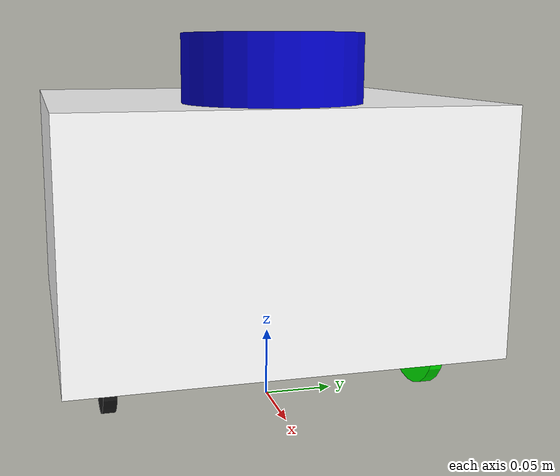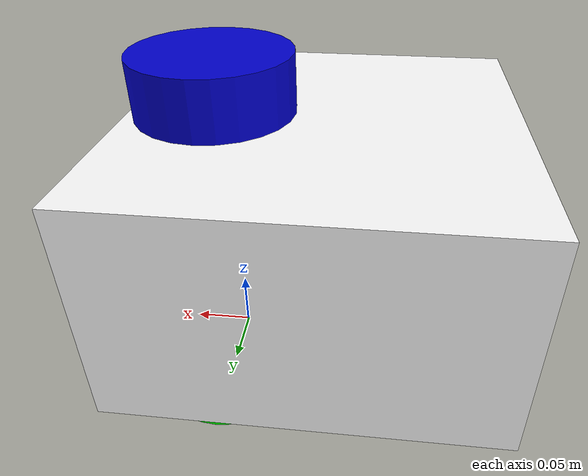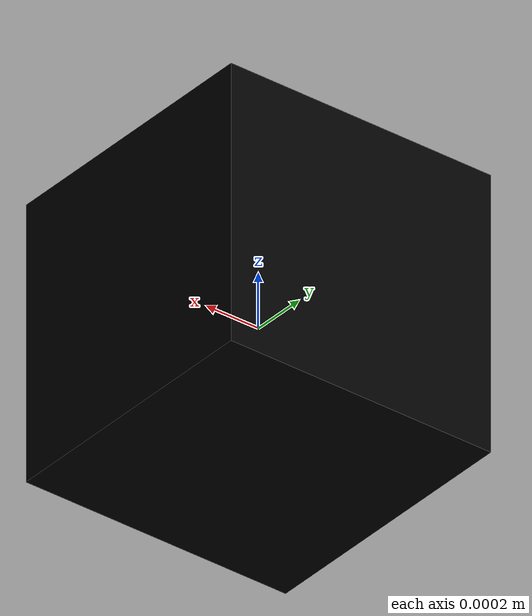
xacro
<?xml version='1.0'?>
<robot name="robpi" xmlns:xacro="http://www.ros.org/wiki/xacro"
 	xmlns:sensor="http://playerstage.sourceforge.net/gazebo/xmlschema/#sensor"
    	xmlns:controller="http://playerstage.sourceforge.net/gazebo/xmlschema/#controller"
    	xmlns:interface="http://playerstage.sourceforge.net/gazebo/xmlschema/#interface">

  <!-- Defining the colors used in this robot -->
  <material name="black">
    <color rgba="0.0 0.0 0.0 1.0"/>
  </material>

  <material name="Red">
	  <color rgba="0.8 0.0 0.0 1.0"/>
  </material>

  <material name="White">
    <color rgba="1.0 1.0 1.0 1.0"/>
  </material>

  <material name="Blue">
    <color rgba="0.0 0.0 0.8 1.0"/>
  </material>

  <material name="Green">
	<color rgba="0.0 1.0 0.0 1.0"/>
  </material>

	<!-- Defining parameters-->
	<xacro:property name="mass_base" value=".90" />
	<xacro:property name="length_base" value="0.3050" />
	<xacro:property name="width_base" value= "0.3080" />
	<xacro:property name="depth_base" value= "0.178" /> <!-- from axil base of laser-->
	<xacro:property name="wheel_base" value= "0.2415" />

	<xacro:property name="length_wheel" value="0.009525" />
	<xacro:property name="radius_wheel" value="0.0414" />
	<xacro:property name="extend_wheel" value="0.0" /> <!-- to be added to collision for axile -->
 	<xacro:property name="M_PI_2" value="1.570796327" />
 	<xacro:property name="M_PI" value="3.1415926535897931" />
	<xacro:property name="radius_caster" value="0.012" />

    <!-- define macros -->
	<xacro:macro name="cylinder_inertial" params="m r h">
	  <inertial>
		 <mass value="${m}" />
		<inertia  ixx="${m*(3*r*r+h*h)/12}" ixy = "0" ixz = "0"
		iyy="${m*(3*r*r+h*h)/12}" iyz = "0"
		izz="${m*r*r/2}" />
	  </inertial>
	</xacro:macro>

	<xacro:macro name="box_inertial" params="m w h d x">
	  <inertial>
		 <mass value="${m}" />
		<inertia  ixx="${m*(h*h + d *d)/12}"
		ixy = "0" ixz = "0"
		iyy="${m*(w*w+d*d)/12}"
		iyz = "0"
		izz="${m*(h*h+w*w)/12}"
		/>

		<origin xyz="${x} 0 0"/>
	  </inertial>
	</xacro:macro>

	<xacro:macro name="sphere_inertial" params="m r">
	  <inertial>
		 <mass value="${m}" />
		<inertia  ixx="${2*m*r*r/5}" ixy = "0" ixz = "0"
		  iyy="${2*m*r*r/5}" iyz = "0"
		  izz="${2*m*r*r/5}"
		/>
	  </inertial>
	</xacro:macro>

	<xacro:macro name="default_inertial" params="mass">
	  <inertial>
		           <mass value="${mass}" />
		           <inertia ixx="1.0" ixy="0.0" ixz="0.0"
		                    iyy="1.0" iyz="0.0"
		                    izz="1.0" />
	  </inertial>
	</xacro:macro>

 <!-- adding base_footprint for simulation -->
<link name='base_footprint'>
	<visual>
		<geometry>
			<box size="0.001 0.001 0.001"/>
		</geometry>
		<origin rpy="0 0 0" xyz="0 0 0"/>
		<material name="black"/>
	</visual>
	<xacro:default_inertial mass="0.0001"/>
</link>

	<gazebo reference="base_footprint">
		<material>Gazebo/Black</material>
		<turnGravityOff>false</turnGravityOff>
	</gazebo>

<joint name="base_footprint_joint" type="fixed">
	<origin xyz="0 0 0" rpy="0 0 0" />
	<parent link="base_footprint" />
	<child link="base_link" />
</joint>

 <!-- base has to sit up by wheel radius  = z also I decreaseed visual box to wheel base si I can see wheels. and x by -.1 -->
<link name='base_link'>
	<visual>
		<geometry>
			<box size="0.001 0.001 0.001"/>
		</geometry>
		<origin rpy="0 0 0" xyz="0 0 0"/>
		<material name="Red"/>
	</visual>
	<xacro:default_inertial mass="0.0001"/>
</link>

	<gazebo reference="base_link">
		<material>Gazebo/Red</material>
		<turnGravityOff>false</turnGravityOff>
	</gazebo>

<joint name="base_link_joint" type="fixed">
	<origin xyz="0 0 ${radius_wheel}" rpy="0 0 0" />
	<parent link="base_link" />
	<child link="chassis_link" />
</joint>

<link name="chassis_link">
	<visual>
		<geometry>
  				<box size="${length_base} ${width_base} ${depth_base}"/>
 			</geometry>
		<origin rpy="0 0 0" xyz="-0.075 0 ${(depth_base/2)}"/> <!-- was depth_base -->
		<material name="White"/>
	</visual>
	<collision>
		<geometry>
   				<box size="${length_base + 0.0254} ${width_base + 0.0254} ${depth_base+ 0.0254}"/>
		</geometry>
		<origin rpy="0 0 0" xyz="-0.075 0 0"/>
	</collision>

	<xacro:box_inertial m="${mass_base}" w="${width_base}" h="${length_base}" d="${depth_base}"  x="-0.01 " />
</link>

<gazebo reference="chassis_link">
    <material>Gazebo/White</material>
    <turnGravityOff>false</turnGravityOff>
</gazebo>

<link name="left_wheel">
	<visual>
 			<geometry>
   				<cylinder length="${length_wheel}" radius="${radius_wheel}"/>
 			</geometry>

		<origin rpy="0 0 0" xyz="0 0 0"/>
		<material name="Green"/>
	</visual>
	<collision>
		<geometry>
   				<cylinder length="${length_wheel+ extend_wheel}" radius="${radius_wheel}"/>
		</geometry>
	</collision>
	<xacro:cylinder_inertial m="1" r="${radius_wheel}" h="${length_wheel}"/>
</link>

<gazebo reference="left_wheel">
	<turnGravityOff>false</turnGravityOff>
    <material>Gazebo/Green</material>
</gazebo>

<link name="right_wheel">
	<visual>
 			<geometry>
   				<cylinder length="${length_wheel}" radius="${radius_wheel}"/>
 			</geometry>
		<origin rpy="0 0 0" xyz="0 0 0"/>
		<material name="Black"/>
	</visual>
	<collision>
		<geometry>
   				<cylinder length="${length_wheel+ extend_wheel}" radius="${radius_wheel}"/>
		</geometry>
	</collision>
	<xacro:cylinder_inertial m="1" r="${radius_wheel}" h="${length_wheel}"/>

</link>

<gazebo reference="right_wheel">
	<turnGravityOff>false</turnGravityOff>
    <material>Gazebo/Red</material>
</gazebo>

 <joint name="base_to_left_wheel" type="continuous">
	<parent link="chassis_link"/>
	<child link="left_wheel"/>
	<origin rpy="1.5707 0 0" xyz="0 ${wheel_base/2} 0"/>
	<axis xyz="0 0 1" />
 </joint>

 <joint name="base_to_right_wheel" type="continuous">
	<parent link="chassis_link"/>
	<child link="right_wheel"/>
	<origin rpy="1.5707 0 0" xyz="0 ${-wheel_base/2} 0"/>
	<axis xyz="0 0 1" />
 </joint>

<!--Caster Back  -->

<link name="caster_link">
	<visual>
	  <origin xyz="0 0 0" rpy="${M_PI/2} 0 0" />
	  <geometry>
	<sphere radius="${radius_caster}" />
	  </geometry>
	  <material name="Blue" />
	</visual>
	<collision>
		<geometry>
			<sphere radius="${radius_caster}" />
		</geometry>
		<origin xyz="0 0. 0" rpy="${M_PI/2} 0 0" />
	</collision>
	<inertial>
		<mass value="1" />
		<origin xyz="0 0 0" />
		<inertia ixx="0.001" ixy="0.0" ixz="0.0"
				 iyy="0.001" iyz="0.0"
				 izz="0.001" />
	</inertial>
</link>

<joint name="caster_joint" type="fixed">
  <parent link="chassis_link"/>
  <child link="caster_link"/>
  <origin xyz="-0.2280 0.0 ${radius_caster -radius_wheel}" rpy="0 0 0"/>
</joint>

<!-- R was ${-M_PI/2} -->

<gazebo reference="caster_link">
	<turnGravityOff>false</turnGravityOff>
    <material>Gazebo/Blue</material>
</gazebo>

--------

  <!-- laser joint -->
  <joint name="laser_joint" type="fixed">
    <origin xyz="0.0100 0.0 0.200" rpy="0 0 0"/>
    <parent link="chassis_link"/>
    <axis xyz="0 0 0" />
    <child link="laser_frame"/>
  </joint>

  <!-- sweep Laser -->
  <link name="laser_frame">
    <collision>
      <origin xyz="0 0 0" rpy="0 0 0"/>
      <geometry>
        <cylinder length=".0508" radius="0.0635"/>
      </geometry>
    </collision>

    <visual>
      <origin xyz="0 0 0" rpy="0 0 0"/>
      <geometry>
        <cylinder length=".0508" radius="0.0635"/>
      </geometry>
      <material name="Blue" />
    </visual>

    <inertial>
      <mass value="1e-5" />
      <origin xyz="0 0 0" rpy="0 0 0"/>
      <inertia ixx="1e-6" ixy="0" ixz="0" iyy="1e-6" iyz="0" izz="1e-6" />
    </inertial>
  </link>

	<!-- gazebo -->

  <!-- ros_control plugin -->
  <gazebo>
    <plugin name="gazebo_ros_control" filename="libgazebo_ros_control.so">
      <robotNamespace>/robot</robotNamespace>

    </plugin>
  </gazebo>

<!-- added publishWheelJointState and publishWheelTF as true per a website  which log said were missing-->
<!-- added wheelTorque to replace torque because log is complaining also changed to 5 from 20-->
	<gazebo>
	<plugin name="differential_drive_controller" filename="libgazebo_ros_diff_drive.so">
	  <legacyMode>false</legacyMode>
	  <alwaysOn>true</alwaysOn>
	  <updateRate>20</updateRate>
	  <leftJoint>base_to_left_wheel</leftJoint>
	  <rightJoint>base_to_right_wheel</rightJoint>
	  <wheelSeparation>0.2415</wheelSeparation>
	  <wheelDiameter>0.0828</wheelDiameter>
	  <torque>20</torque>
	  <wheelTorque>5</wheelTorque>
	  <commandTopic>cmd_vel</commandTopic>
	  <odometryTopic>odom</odometryTopic>
	  <odometryFrame>odom</odometryFrame>
	  <robotBaseFrame>base_link</robotBaseFrame>
	  <publishWheelTF>true</publishWheelTF>
	  <publishWheelJointState>true</publishWheelJointState>
	  <wheelAcceleration>0.05</wheelAcceleration>
	  <publishTf>true</publishTf>

	</plugin>
	</gazebo>
<!-- hokuyo -->
  <gazebo reference="laser_frame">
    <sensor type="ray" name="head_hokuyo_sensor">
      <pose>0 0 0 0 0 0</pose>
      <visualize>false</visualize>
      <update_rate>40</update_rate>
      <ray>
        <scan>
          <horizontal>
            <samples>720</samples>
            <resolution>1</resolution>
            <min_angle>-1.570796</min_angle>
            <max_angle>1.570796</max_angle>
          </horizontal>
        </scan>
        <range>
          <min>0.10</min>
          <max>30.0</max>
          <resolution>0.01</resolution>
        </range>
        <noise>
          <type>gaussian</type>
          <mean>0.0</mean>
          <stddev>0.01</stddev>
        </noise>
      </ray>
      <plugin name="gazebo_ros_head_hokuyo_controller" filename="libgazebo_ros_laser.so">
        <topicName>/scan</topicName>
        <frameName>laser_frame</frameName>
      </plugin>
    </sensor>
  </gazebo>

</robot>
